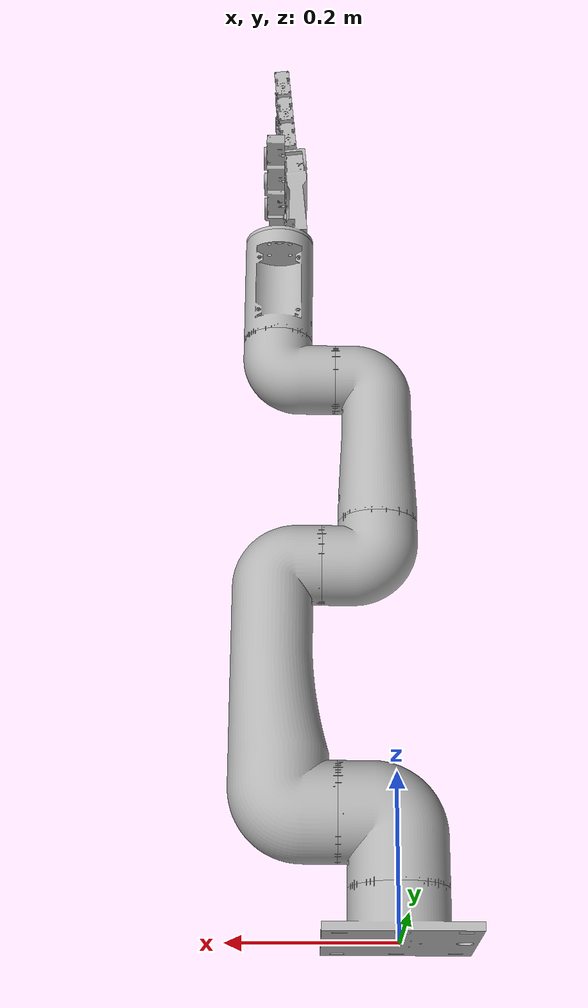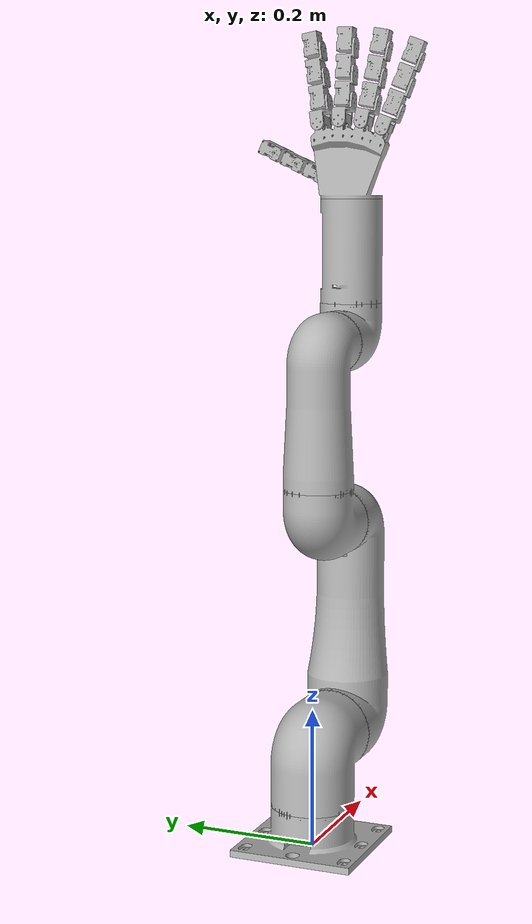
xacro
<?xml version="1.0" ?>
<robot name="mk" xmlns:xacro="http://www.ros.org/wiki/xacro">

  <!-- pass from launch: prefix:=r1_ / prefix:=r2_ ... -->

  <xacro:property name="prefix" value="real_"/>

  <xacro:include filename="$(find mk_description)/urdf/materials.xacro" />
  <xacro:include filename="$(find mk_description)/urdf/mk.trans" />
  <xacro:include filename="$(find mk_description)/urdf/mk.gazebo" />

  <link name="${prefix}base_link">
    <inertial>
      <origin xyz="0.001253595501875241 -2.425128974916387e-16 0.016880943454350202" rpy="0 0 0"/>
      <mass value="4.415971366531325"/>
      <inertia ixx="0.010003" iyy="0.009958" izz="0.017765" ixy="0.0" iyz="-0.0" ixz="3e-05"/>
    </inertial>
    <visual>
      <origin xyz="0 0 0" rpy="0 0 0"/>
      <geometry>
        <mesh filename="package://mk_description/meshes/base_link.stl" scale="0.001 0.001 0.001"/>
      </geometry>
      <material name="silver"/>
    </visual>
    <collision>
      <origin xyz="0 0 0" rpy="0 0 0"/>
      <geometry>
        <mesh filename="package://mk_description/meshes/base_link.stl" scale="0.001 0.001 0.001"/>
      </geometry>
    </collision>
  </link>

  <link name="${prefix}link1_1">
    <inertial>
      <origin xyz="0.012757531934532012 1.2186053422867295e-12 0.06719265641075811" rpy="0 0 0"/>
      <mass value="3.0929952957501237"/>
      <inertia ixx="0.011232" iyy="0.011123" izz="0.009013" ixy="0.0" iyz="0.0" ixz="-0.001286"/>
    </inertial>
    <visual>
      <origin xyz="-0.0 -0.0 -0.061" rpy="0 0 0"/>
      <geometry>
        <mesh filename="package://mk_description/meshes/link1_1.stl" scale="0.001 0.001 0.001"/>
      </geometry>
      <material name="silver"/>
    </visual>
    <collision>
      <origin xyz="-0.0 -0.0 -0.061" rpy="0 0 0"/>
      <geometry>
        <mesh filename="package://mk_description/meshes/link1_1.stl" scale="0.001 0.001 0.001"/>
      </geometry>
    </collision>
  </link>

  <link name="${prefix}link2_1">
    <inertial>
      <origin xyz="0.07202168862575391 -3.5313984794949443e-12 0.1445001916818219" rpy="0 0 0"/>
      <mass value="15.846338073110624"/>
      <inertia ixx="0.132567" iyy="0.13402" izz="0.029131" ixy="-0.0" iyz="-0.0" ixz="-0.007531"/>
    </inertial>
    <visual>
      <origin xyz="-0.071 -0.0 -0.151" rpy="0 0 0"/>
      <geometry>
        <mesh filename="package://mk_description/meshes/link2_1.stl" scale="0.001 0.001 0.001"/>
      </geometry>
      <material name="silver"/>
    </visual>
    <collision>
      <origin xyz="-0.071 -0.0 -0.151" rpy="0 0 0"/>
      <geometry>
        <mesh filename="package://mk_description/meshes/link2_1.stl" scale="0.001 0.001 0.001"/>
      </geometry>
    </collision>
  </link>

  <link name="${prefix}link3_1">
    <inertial>
      <origin xyz="-0.05114273870375564 4.038438904121806e-13 0.014758066823390759" rpy="0 0 0"/>
      <mass value="1.9656169541020214"/>
      <inertia ixx="0.003791" iyy="0.004814" izz="0.004679" ixy="0.0" iyz="-0.0" ixz="0.000672"/>
    </inertial>
    <visual>
      <origin xyz="-0.09 0.0 -0.461" rpy="0 0 0"/>
      <geometry>
        <mesh filename="package://mk_description/meshes/link3_1.stl" scale="0.001 0.001 0.001"/>
      </geometry>
      <material name="silver"/>
    </visual>
    <collision>
      <origin xyz="-0.09 0.0 -0.461" rpy="0 0 0"/>
      <geometry>
        <mesh filename="package://mk_description/meshes/link3_1.stl" scale="0.001 0.001 0.001"/>
      </geometry>
    </collision>
  </link>

  <link name="${prefix}link4_1">
    <inertial>
      <origin xyz="0.002693323451248456 3.8855923684264276e-08 0.08440714552064266" rpy="0 0 0"/>
      <mass value="7.842285748942116"/>
      <inertia ixx="0.033994" iyy="0.034351" izz="0.010735" ixy="-0.0" iyz="-0.0" ixz="-0.003025"/>
    </inertial>
    <visual>
      <origin xyz="-0.02 -0.0 -0.517" rpy="0 0 0"/>
      <geometry>
        <mesh filename="package://mk_description/meshes/link4_1.stl" scale="0.001 0.001 0.001"/>
      </geometry>
      <material name="silver"/>
    </visual>
    <collision>
      <origin xyz="-0.02 -0.0 -0.517" rpy="0 0 0"/>
      <geometry>
        <mesh filename="package://mk_description/meshes/link4_1.stl" scale="0.001 0.001 0.001"/>
      </geometry>
    </collision>
  </link>

  <link name="${prefix}link5_1">
    <inertial>
      <origin xyz="0.0559602537349705 -2.0965830206548403e-07 0.016043221095647042" rpy="0 0 0"/>
      <mass value="1.4488766384865912"/>
      <inertia ixx="0.002409" iyy="0.003275" izz="0.003165" ixy="0.0" iyz="0.0" ixz="-0.000572"/>
    </inertial>
    <visual>
      <origin xyz="-0.0735 -0.0 -0.721" rpy="0 0 0"/>
      <geometry>
        <mesh filename="package://mk_description/meshes/link5_1.stl" scale="0.001 0.001 0.001"/>
      </geometry>
      <material name="silver"/>
    </visual>
    <collision>
      <origin xyz="-0.0735 -0.0 -0.721" rpy="0 0 0"/>
      <geometry>
        <mesh filename="package://mk_description/meshes/link5_1.stl" scale="0.001 0.001 0.001"/>
      </geometry>
    </collision>
  </link>

  <link name="${prefix}link6_1">
    <inertial>
      <origin xyz="0.00010433437375184651 -0.005286826016069605 0.07445480614360678" rpy="0 0 0"/>
      <mass value="1.2273340069715037"/>
      <inertia ixx="0.004651" iyy="0.004904" izz="0.001868" ixy="-1e-06" iyz="2.6e-05" ixz="6e-06"/>
    </inertial>
    <visual>
      <origin xyz="-0.1485 -0.0 -0.7745" rpy="0 0 0"/>
      <geometry>
        <mesh filename="package://mk_description/meshes/link6_1.stl" scale="0.001 0.001 0.001"/>
      </geometry>
      <material name="silver"/>
    </visual>
    <collision>
      <origin xyz="-0.1485 -0.0 -0.7745" rpy="0 0 0"/>
      <geometry>
        <mesh filename="package://mk_description/meshes/link6_1.stl" scale="0.001 0.001 0.001"/>
      </geometry>
    </collision>
  </link>

  <link name="${prefix}palm_1">
    <inertial>
      <origin xyz="-0.01849799368570129 -0.003288621708244126 0.05472215474509601" rpy="0 0 0"/>
      <mass value="2.044043856185231"/>
      <inertia ixx="0.004173" iyy="0.002907" izz="0.001986" ixy="-3.9e-05" iyz="0.000149" ixz="0.000254"/>
    </inertial>
    <visual>
      <origin xyz="-0.1485 -0.0 -0.9245" rpy="0 0 0"/>
      <geometry>
        <mesh filename="package://mk_description/meshes/palm_1.stl" scale="0.001 0.001 0.001"/>
      </geometry>
      <material name="silver"/>
    </visual>
    <collision>
      <origin xyz="-0.1485 -0.0 -0.9245" rpy="0 0 0"/>
      <geometry>
        <mesh filename="package://mk_description/meshes/palm_1.stl" scale="0.001 0.001 0.001"/>
      </geometry>
    </collision>
  </link>

  <link name="${prefix}index_1_1">
    <inertial>
      <origin xyz="-0.012003156274217913 -0.0001843174038660758 0.015503517151384427" rpy="0 0 0"/>
      <mass value="0.04748136367345911"/>
      <inertia ixx="7e-06" iyy="1e-05" izz="8e-06" ixy="1e-06" iyz="1e-06" ixz="-0.0"/>
    </inertial>
    <visual>
      <origin xyz="-0.143105 -0.038906 -1.029721" rpy="0 0 0"/>
      <geometry>
        <mesh filename="package://mk_description/meshes/index_1_1.stl" scale="0.001 0.001 0.001"/>
      </geometry>
      <material name="silver"/>
    </visual>
    <collision>
      <origin xyz="-0.143105 -0.038906 -1.029721" rpy="0 0 0"/>
      <geometry>
        <mesh filename="package://mk_description/meshes/index_1_1.stl" scale="0.001 0.001 0.001"/>
      </geometry>
    </collision>
  </link>

  <link name="${prefix}middle_1_1">
    <inertial>
      <origin xyz="-0.011873129755786943 -0.003344684606072878 0.015242306952340856" rpy="0 0 0"/>
      <mass value="0.04748136367345911"/>
      <inertia ixx="7e-06" iyy="9e-06" izz="8e-06" ixy="1e-06" iyz="1e-06" ixz="-0.0"/>
    </inertial>
    <visual>
      <origin xyz="-0.142823 -0.007655 -1.033686" rpy="0 0 0"/>
      <geometry>
        <mesh filename="package://mk_description/meshes/middle_1_1.stl" scale="0.001 0.001 0.001"/>
      </geometry>
      <material name="silver"/>
    </visual>
    <collision>
      <origin xyz="-0.142823 -0.007655 -1.033686" rpy="0 0 0"/>
      <geometry>
        <mesh filename="package://mk_description/meshes/middle_1_1.stl" scale="0.001 0.001 0.001"/>
      </geometry>
    </collision>
  </link>

  <link name="${prefix}ring_1_1">
    <inertial>
      <origin xyz="-0.01177642870038545 -0.006392943751630707 0.01431467736832781" rpy="0 0 0"/>
      <mass value="0.04748136367345911"/>
      <inertia ixx="7e-06" iyy="9e-06" izz="9e-06" ixy="1e-06" iyz="2e-06" ixz="-0.0"/>
    </inertial>
    <visual>
      <origin xyz="-0.14332 0.0242 -1.031634" rpy="0 0 0"/>
      <geometry>
        <mesh filename="package://mk_description/meshes/ring_1_1.stl" scale="0.001 0.001 0.001"/>
      </geometry>
      <material name="silver"/>
    </visual>
    <collision>
      <origin xyz="-0.14332 0.0242 -1.031634" rpy="0 0 0"/>
      <geometry>
        <mesh filename="package://mk_description/meshes/ring_1_1.stl" scale="0.001 0.001 0.001"/>
      </geometry>
    </collision>
  </link>

  <link name="${prefix}pinky_1_1">
    <inertial>
      <origin xyz="-0.011710261878068423 -0.00918021492423643 0.01276899388554198" rpy="0 0 0"/>
      <mass value="0.04748136367345911"/>
      <inertia ixx="7e-06" iyy="8e-06" izz="9e-06" ixy="1e-06" iyz="1e-06" ixz="-0.0"/>
    </inertial>
    <visual>
      <origin xyz="-0.144438 0.053842 -1.022516" rpy="0 0 0"/>
      <geometry>
        <mesh filename="package://mk_description/meshes/pinky_1_1.stl" scale="0.001 0.001 0.001"/>
      </geometry>
      <material name="silver"/>
    </visual>
    <collision>
      <origin xyz="-0.144438 0.053842 -1.022516" rpy="0 0 0"/>
      <geometry>
        <mesh filename="package://mk_description/meshes/pinky_1_1.stl" scale="0.001 0.001 0.001"/>
      </geometry>
    </collision>
  </link>

  <link name="${prefix}index_2_1">
    <inertial>
      <origin xyz="0.0013592426070857533 0.014112910707545577 0.006584417463850301" rpy="0 0 0"/>
      <mass value="0.1282452686281743"/>
      <inertia ixx="2.4e-05" iyy="2.2e-05" izz="1.1e-05" ixy="-0.0" iyz="1e-06" ixz="-1e-06"/>
    </inertial>
    <visual>
      <origin xyz="-0.13696 -0.030659 -1.064498" rpy="0 0 0"/>
      <geometry>
        <mesh filename="package://mk_description/meshes/index_2_1.stl" scale="0.001 0.001 0.001"/>
      </geometry>
      <material name="silver"/>
    </visual>
    <collision>
      <origin xyz="-0.13696 -0.030659 -1.064498" rpy="0 0 0"/>
      <geometry>
        <mesh filename="package://mk_description/meshes/index_2_1.stl" scale="0.001 0.001 0.001"/>
      </geometry>
    </collision>
  </link>

  <link name="${prefix}index_3_1">
    <inertial>
      <origin xyz="0.001359142984049877 0.014112479821706991 0.006584419644577233" rpy="0 0 0"/>
      <mass value="0.1282452686281743"/>
      <inertia ixx="2.4e-05" iyy="2.2e-05" izz="1.1e-05" ixy="-0.0" iyz="1e-06" ixz="-1e-06"/>
    </inertial>
    <visual>
      <origin xyz="-0.140923 -0.037336 -1.102207" rpy="0 0 0"/>
      <geometry>
        <mesh filename="package://mk_description/meshes/index_3_1.stl" scale="0.001 0.001 0.001"/>
      </geometry>
      <material name="silver"/>
    </visual>
    <collision>
      <origin xyz="-0.140923 -0.037336 -1.102207" rpy="0 0 0"/>
      <geometry>
        <mesh filename="package://mk_description/meshes/index_3_1.stl" scale="0.001 0.001 0.001"/>
      </geometry>
    </collision>
  </link>

  <link name="${prefix}index_4_1">
    <inertial>
      <origin xyz="0.0012067405325764669 0.014773830435752318 0.0046425218728198825" rpy="0 0 0"/>
      <mass value="0.1185904893413169"/>
      <inertia ixx="1.7e-05" iyy="1.5e-05" izz="1e-05" ixy="-0.0" iyz="-1e-06" ixz="-1e-06"/>
    </inertial>
    <visual>
      <origin xyz="-0.144886 -0.044012 -1.139916" rpy="0 0 0"/>
      <geometry>
        <mesh filename="package://mk_description/meshes/index_4_1.stl" scale="0.001 0.001 0.001"/>
      </geometry>
      <material name="silver"/>
    </visual>
    <collision>
      <origin xyz="-0.144886 -0.044012 -1.139916" rpy="0 0 0"/>
      <geometry>
        <mesh filename="package://mk_description/meshes/index_4_1.stl" scale="0.001 0.001 0.001"/>
      </geometry>
    </collision>
  </link>

  <link name="${prefix}middle_2_1">
    <inertial>
      <origin xyz="0.0009410365815004373 0.012755743075373938 0.008986834760588147" rpy="0 0 0"/>
      <mass value="0.1282452686281743"/>
      <inertia ixx="2.4e-05" iyy="2.1e-05" izz="1.1e-05" ixy="0.0" iyz="2e-06" ixz="-1e-06"/>
    </inertial>
    <visual>
      <origin xyz="-0.137217 0.006845 -1.066452" rpy="0 0 0"/>
      <geometry>
        <mesh filename="package://mk_description/meshes/middle_2_1.stl" scale="0.001 0.001 0.001"/>
      </geometry>
      <material name="silver"/>
    </visual>
    <collision>
      <origin xyz="-0.137217 0.006845 -1.066452" rpy="0 0 0"/>
      <geometry>
        <mesh filename="package://mk_description/meshes/middle_2_1.stl" scale="0.001 0.001 0.001"/>
      </geometry>
    </collision>
  </link>

  <link name="${prefix}middle_3_1">
    <inertial>
      <origin xyz="0.0009403824173050968 0.012755743075381711 0.008986927732266725" rpy="0 0 0"/>
      <mass value="0.1282452686281743"/>
      <inertia ixx="2.4e-05" iyy="2.1e-05" izz="1.1e-05" ixy="0.0" iyz="2e-06" ixz="-1e-06"/>
    </inertial>
    <visual>
      <origin xyz="-0.141242 0.006845 -1.104741" rpy="0 0 0"/>
      <geometry>
        <mesh filename="package://mk_description/meshes/middle_3_1.stl" scale="0.001 0.001 0.001"/>
      </geometry>
      <material name="silver"/>
    </visual>
    <collision>
      <origin xyz="-0.141242 0.006845 -1.104741" rpy="0 0 0"/>
      <geometry>
        <mesh filename="package://mk_description/meshes/middle_3_1.stl" scale="0.001 0.001 0.001"/>
      </geometry>
    </collision>
  </link>

  <link name="${prefix}middle_4_1">
    <inertial>
      <origin xyz="0.0007519472486991197 0.013745528207874521 0.007193841713581728" rpy="0 0 0"/>
      <mass value="0.1185904893413169"/>
      <inertia ixx="1.7e-05" iyy="1.5e-05" izz="9e-06" ixy="-0.0" iyz="-0.0" ixz="-1e-06"/>
    </inertial>
    <visual>
      <origin xyz="-0.145266 0.006845 -1.14303" rpy="0 0 0"/>
      <geometry>
        <mesh filename="package://mk_description/meshes/middle_4_1.stl" scale="0.001 0.001 0.001"/>
      </geometry>
      <material name="silver"/>
    </visual>
    <collision>
      <origin xyz="-0.145266 0.006845 -1.14303" rpy="0 0 0"/>
      <geometry>
        <mesh filename="package://mk_description/meshes/middle_4_1.stl" scale="0.001 0.001 0.001"/>
      </geometry>
    </collision>
  </link>

  <link name="${prefix}ring_2_1">
    <inertial>
      <origin xyz="0.0004933103936223815 0.010978865647973998 0.01111737284077896" rpy="0 0 0"/>
      <mass value="0.1282452686281743"/>
      <inertia ixx="2.4e-05" iyy="2e-05" izz="1.2e-05" ixy="1e-06" iyz="4e-06" ixz="-1e-06"/>
    </inertial>
    <visual>
      <origin xyz="-0.138159 0.044474 -1.061258" rpy="0 0 0"/>
      <geometry>
        <mesh filename="package://mk_description/meshes/ring_2_1.stl" scale="0.001 0.001 0.001"/>
      </geometry>
      <material name="silver"/>
    </visual>
    <collision>
      <origin xyz="-0.138159 0.044474 -1.061258" rpy="0 0 0"/>
      <geometry>
        <mesh filename="package://mk_description/meshes/ring_2_1.stl" scale="0.001 0.001 0.001"/>
      </geometry>
    </collision>
  </link>

  <link name="${prefix}ring_3_1">
    <inertial>
      <origin xyz="0.0004932107705865052 0.010978296533827897 0.011117375021508336" rpy="0 0 0"/>
      <mass value="0.1282452686281743"/>
      <inertia ixx="2.4e-05" iyy="2e-05" izz="1.2e-05" ixy="1e-06" iyz="4e-06" ixz="-1e-06"/>
    </inertial>
    <visual>
      <origin xyz="-0.142122 0.05115 -1.098967" rpy="0 0 0"/>
      <geometry>
        <mesh filename="package://mk_description/meshes/ring_3_1.stl" scale="0.001 0.001 0.001"/>
      </geometry>
      <material name="silver"/>
    </visual>
    <collision>
      <origin xyz="-0.142122 0.05115 -1.098967" rpy="0 0 0"/>
      <geometry>
        <mesh filename="package://mk_description/meshes/ring_3_1.stl" scale="0.001 0.001 0.001"/>
      </geometry>
    </collision>
  </link>

  <link name="${prefix}ring_4_1">
    <inertial>
      <origin xyz="0.00027360763069000926 0.012264850963387482 0.0095272488413789" rpy="0 0 0"/>
      <mass value="0.1185904893413169"/>
      <inertia ixx="1.7e-05" iyy="1.5e-05" izz="9e-06" ixy="0.0" iyz="1e-06" ixz="-1e-06"/>
    </inertial>
    <visual>
      <origin xyz="-0.146085 0.057827 -1.136676" rpy="0 0 0"/>
      <geometry>
        <mesh filename="package://mk_description/meshes/ring_4_1.stl" scale="0.001 0.001 0.001"/>
      </geometry>
      <material name="silver"/>
    </visual>
    <collision>
      <origin xyz="-0.146085 0.057827 -1.136676" rpy="0 0 0"/>
      <geometry>
        <mesh filename="package://mk_description/meshes/ring_4_1.stl" scale="0.001 0.001 0.001"/>
      </geometry>
    </collision>
  </link>

  <link name="${prefix}pinky_2_1">
    <inertial>
      <origin xyz="2.2107880944283176e-05 0.008666033434462497 0.012814334487809775" rpy="0 0 0"/>
      <mass value="0.1282452686281743"/>
      <inertia ixx="2.4e-05" iyy="1.8e-05" izz="1.4e-05" ixy="1e-06" iyz="5e-06" ixz="-1e-06"/>
    </inertial>
    <visual>
      <origin xyz="-0.139636 0.079177 -1.048017" rpy="0 0 0"/>
      <geometry>
        <mesh filename="package://mk_description/meshes/pinky_2_1.stl" scale="0.001 0.001 0.001"/>
      </geometry>
      <material name="silver"/>
    </visual>
    <collision>
      <origin xyz="-0.139636 0.079177 -1.048017" rpy="0 0 0"/>
      <geometry>
        <mesh filename="package://mk_description/meshes/pinky_2_1.stl" scale="0.001 0.001 0.001"/>
      </geometry>
    </collision>
  </link>

  <link name="${prefix}pinky_3_1">
    <inertial>
      <origin xyz="8.091020338218957e-06 0.008852933732520829 0.012884042204742041" rpy="0 0 0"/>
      <mass value="0.1282452686281743"/>
      <inertia ixx="2.4e-05" iyy="1.8e-05" izz="1.4e-05" ixy="1e-06" iyz="5e-06" ixz="-1e-06"/>
    </inertial>
    <visual>
      <origin xyz="-0.143427 0.092468 -1.083951" rpy="0 0 0"/>
      <geometry>
        <mesh filename="package://mk_description/meshes/pinky_3_1.stl" scale="0.001 0.001 0.001"/>
      </geometry>
      <material name="silver"/>
    </visual>
    <collision>
      <origin xyz="-0.143427 0.092468 -1.083951" rpy="0 0 0"/>
      <geometry>
        <mesh filename="package://mk_description/meshes/pinky_3_1.stl" scale="0.001 0.001 0.001"/>
      </geometry>
    </collision>
  </link>

  <link name="${prefix}pinky_4_1">
    <inertial>
      <origin xyz="-0.00023699550517802814 0.010392110335995783 0.01154159751508299" rpy="0 0 0"/>
      <mass value="0.1185904893413169"/>
      <inertia ixx="1.7e-05" iyy="1.5e-05" izz="1e-05" ixy="0.0" iyz="2e-06" ixz="-1e-06"/>
    </inertial>
    <visual>
      <origin xyz="-0.147204 0.105572 -1.119955" rpy="0 0 0"/>
      <geometry>
        <mesh filename="package://mk_description/meshes/pinky_4_1.stl" scale="0.001 0.001 0.001"/>
      </geometry>
      <material name="silver"/>
    </visual>
    <collision>
      <origin xyz="-0.147204 0.105572 -1.119955" rpy="0 0 0"/>
      <geometry>
        <mesh filename="package://mk_description/meshes/pinky_4_1.stl" scale="0.001 0.001 0.001"/>
      </geometry>
    </collision>
  </link>

  <link name="${prefix}thumb_1_1">
    <inertial>
      <origin xyz="0.0033442043857143666 0.01920624215067031 -0.008254977053352541" rpy="0 0 0"/>
      <mass value="0.04748136367345911"/>
      <inertia ixx="9e-06" iyy="8e-06" izz="8e-06" ixy="-2e-06" iyz="1e-06" ixz="-0.0"/>
    </inertial>
    <visual>
      <origin xyz="-0.15275 -0.011386 -0.962857" rpy="0 0 0"/>
      <geometry>
        <mesh filename="package://mk_description/meshes/thumb_1_1.stl" scale="0.001 0.001 0.001"/>
      </geometry>
      <material name="silver"/>
    </visual>
    <collision>
      <origin xyz="-0.15275 -0.011386 -0.962857" rpy="0 0 0"/>
      <geometry>
        <mesh filename="package://mk_description/meshes/thumb_1_1.stl" scale="0.001 0.001 0.001"/>
      </geometry>
    </collision>
  </link>

  <link name="${prefix}thumb_2_1">
    <inertial>
      <origin xyz="-0.012756223295727287 0.008187679826243473 0.003822349671507075" rpy="0 0 0"/>
      <mass value="0.1282452686281743"/>
      <inertia ixx="2.1e-05" iyy="1.3e-05" izz="2.2e-05" ixy="-2e-06" iyz="-5e-06" ixz="-1e-06"/>
    </inertial>
    <visual>
      <origin xyz="-0.16725 -0.048841 -0.958255" rpy="0 0 0"/>
      <geometry>
        <mesh filename="package://mk_description/meshes/thumb_2_1.stl" scale="0.001 0.001 0.001"/>
      </geometry>
      <material name="silver"/>
    </visual>
    <collision>
      <origin xyz="-0.16725 -0.048841 -0.958255" rpy="0 0 0"/>
      <geometry>
        <mesh filename="package://mk_description/meshes/thumb_2_1.stl" scale="0.001 0.001 0.001"/>
      </geometry>
    </collision>
  </link>

  <link name="${prefix}thumb_3_1">
    <inertial>
      <origin xyz="-0.012756223295727565 0.0081875296271577 0.0038221527485170492" rpy="0 0 0"/>
      <mass value="0.1282452686281743"/>
      <inertia ixx="2.1e-05" iyy="1.3e-05" izz="2.2e-05" ixy="-2e-06" iyz="-5e-06" ixz="-1e-06"/>
    </inertial>
    <visual>
      <origin xyz="-0.16725 -0.083734 -0.974526" rpy="0 0 0"/>
      <geometry>
        <mesh filename="package://mk_description/meshes/thumb_3_1.stl" scale="0.001 0.001 0.001"/>
      </geometry>
      <material name="silver"/>
    </visual>
    <collision>
      <origin xyz="-0.16725 -0.083734 -0.974526" rpy="0 0 0"/>
      <geometry>
        <mesh filename="package://mk_description/meshes/thumb_3_1.stl" scale="0.001 0.001 0.001"/>
      </geometry>
    </collision>
  </link>

  <link name="${prefix}thumb_4_1">
    <inertial>
      <origin xyz="-0.013746008428213302 0.006554095628134901 0.00306021727433603" rpy="0 0 0"/>
      <mass value="0.1185904893413169"/>
      <inertia ixx="1.5e-05" iyy="1.1e-05" izz="1.6e-05" ixy="0.0" iyz="-3e-06" ixz="0.0"/>
    </inertial>
    <visual>
      <origin xyz="-0.16725 -0.118626 -0.990797" rpy="0 0 0"/>
      <geometry>
        <mesh filename="package://mk_description/meshes/thumb_4_1.stl" scale="0.001 0.001 0.001"/>
      </geometry>
      <material name="silver"/>
    </visual>
    <collision>
      <origin xyz="-0.16725 -0.118626 -0.990797" rpy="0 0 0"/>
      <geometry>
        <mesh filename="package://mk_description/meshes/thumb_4_1.stl" scale="0.001 0.001 0.001"/>
      </geometry>
    </collision>
  </link>

  <joint name="${prefix}joint1" type="continuous">
    <origin xyz="0.0 0.0 0.061" rpy="0 0 0"/>
    <parent link="${prefix}base_link"/>
    <child link="${prefix}link1_1"/>
    <axis xyz="0.0 0.0 1.0"/>
    <dynamics damping="1.0" friction="1.0"/>
  </joint>

  <joint name="${prefix}joint2" type="continuous">
    <origin xyz="0.071 0.0 0.09" rpy="0 0 0"/>
    <parent link="${prefix}link1_1"/>
    <child link="${prefix}link2_1"/>
    <axis xyz="-1.0 -0.0 -0.0"/>
    <dynamics damping="1.0" friction="1.0"/>
  </joint>

  <joint name="${prefix}joint3" type="continuous">
    <origin xyz="0.019 -0.0 0.31" rpy="0 0 0"/>
    <parent link="${prefix}link2_1"/>
    <child link="${prefix}link3_1"/>
    <axis xyz="1.0 -0.0 0.0"/>
    <dynamics damping="1.0" friction="1.0"/>
  </joint>

  <joint name="${prefix}joint4" type="continuous">
    <origin xyz="-0.07 0.0 0.056" rpy="0 0 0"/>
    <parent link="${prefix}link3_1"/>
    <child link="${prefix}link4_1"/>
    <axis xyz="0.0 -0.0 -1.0"/>
    <dynamics damping="1.0" friction="1.0"/>
  </joint>

  <joint name="${prefix}joint5" type="continuous">
    <origin xyz="0.0535 0.0 0.204" rpy="0 0 0"/>
    <parent link="${prefix}link4_1"/>
    <child link="${prefix}link5_1"/>
    <axis xyz="-1.0 0.0 0.0"/>
    <dynamics damping="1.0" friction="1.0"/>
  </joint>

  <joint name="${prefix}joint6" type="continuous">
    <origin xyz="0.075 0.0 0.0535" rpy="0 0 0"/>
    <parent link="${prefix}link5_1"/>
    <child link="${prefix}link6_1"/>
    <axis xyz="-0.0 0.0 -1.0"/>
    <dynamics damping="1.0" friction="1.0"/>
  </joint>

  <joint name="${prefix}fixed_hand_link6" type="fixed">
    <origin xyz="0.0 0.0 0.15" rpy="0 0 0"/>
    <parent link="${prefix}link6_1"/>
    <child link="${prefix}palm_1"/>
  </joint>

  <joint name="${prefix}joint_index_RT" type="continuous">
    <origin xyz="-0.005395 0.038906 0.105221" rpy="0 0 0"/>
    <parent link="${prefix}palm_1"/>
    <child link="${prefix}index_1_1"/>
    <axis xyz="-0.994109 0.051541 0.095347"/>
    <dynamics damping="1.0" friction="1.0"/>
  </joint>

  <joint name="${prefix}joint_middle_RT" type="continuous">
    <origin xyz="-0.005677 0.007655 0.109186" rpy="0 0 0"/>
    <parent link="${prefix}palm_1"/>
    <child link="${prefix}middle_1_1"/>
    <axis xyz="-0.994522 0.0 0.104528"/>
    <dynamics damping="1.0" friction="1.0"/>
  </joint>

  <joint name="${prefix}joint_ring_RT" type="continuous">
    <origin xyz="-0.00518 -0.0242 0.107134" rpy="0 0 0"/>
    <parent link="${prefix}palm_1"/>
    <child link="${prefix}ring_1_1"/>
    <axis xyz="-0.994109 -0.051541 0.095347"/>
    <dynamics damping="1.0" friction="1.0"/>
  </joint>

  <joint name="${prefix}joint_pinky_RT" type="continuous">
    <origin xyz="-0.004062 -0.053842 0.098016" rpy="0 0 0"/>
    <parent link="${prefix}palm_1"/>
    <child link="${prefix}pinky_1_1"/>
    <axis xyz="-0.992811 -0.098225 0.068401"/>
    <dynamics damping="1.0" friction="1.0"/>
  </joint>

  <joint name="${prefix}joint_index_MCP" type="continuous">
    <origin xyz="-0.006145 -0.008247 0.034777" rpy="0 0 0"/>
    <parent link="${prefix}index_1_1"/>
    <child link="${prefix}index_2_1"/>
    <axis xyz="0.033947 0.983499 -0.177701"/>
    <dynamics damping="1.0" friction="1.0"/>
  </joint>

  <joint name="${prefix}joint_index_PIP" type="continuous">
    <origin xyz="0.003963 0.006677 0.037709" rpy="0 0 0"/>
    <parent link="${prefix}index_2_1"/>
    <child link="${prefix}index_3_1"/>
    <axis xyz="0.033947 0.983499 -0.177701"/>
    <dynamics damping="1.0" friction="1.0"/>
  </joint>

  <joint name="${prefix}joint_index_DIP" type="continuous">
    <origin xyz="0.003963 0.006676 0.037709" rpy="0 0 0"/>
    <parent link="${prefix}index_3_1"/>
    <child link="${prefix}index_4_1"/>
    <axis xyz="0.033947 0.983499 -0.177701"/>
    <dynamics damping="1.0" friction="1.0"/>
  </joint>

  <joint name="${prefix}joint_middle_MCP" type="continuous">
    <origin xyz="-0.005606 -0.0145 0.032766" rpy="0 0 0"/>
    <parent link="${prefix}middle_1_1"/>
    <child link="${prefix}middle_2_1"/>
    <axis xyz="-0.0 1.0 -0.0"/>
    <dynamics damping="1.0" friction="1.0"/>
  </joint>

  <joint name="${prefix}joint_middle_PIP" type="continuous">
    <origin xyz="0.004025 0.0 0.038289" rpy="0 0 0"/>
    <parent link="${prefix}middle_2_1"/>
    <child link="${prefix}middle_3_1"/>
    <axis xyz="-0.0 1.0 -0.0"/>
    <dynamics damping="1.0" friction="1.0"/>
  </joint>

  <joint name="${prefix}joint_middle_DIP" type="continuous">
    <origin xyz="0.004024 0.0 0.038289" rpy="0 0 0"/>
    <parent link="${prefix}middle_3_1"/>
    <child link="${prefix}middle_4_1"/>
    <axis xyz="-0.0 1.0 -0.0"/>
    <dynamics damping="1.0" friction="1.0"/>
  </joint>

  <joint name="${prefix}joint_ring_MCP" type="continuous">
    <origin xyz="-0.005161 -0.020274 0.029624" rpy="0 0 0"/>
    <parent link="${prefix}ring_1_1"/>
    <child link="${prefix}ring_2_1"/>
    <axis xyz="-0.033947 0.983499 0.177701"/>
    <dynamics damping="1.0" friction="1.0"/>
  </joint>

  <joint name="${prefix}joint_ring_PIP" type="continuous">
    <origin xyz="0.003963 -0.006676 0.037709" rpy="0 0 0"/>
    <parent link="${prefix}ring_2_1"/>
    <child link="${prefix}ring_3_1"/>
    <axis xyz="-0.033947 0.983499 0.177701"/>
    <dynamics damping="1.0" friction="1.0"/>
  </joint>

  <joint name="${prefix}joint_ring_DIP" type="continuous">
    <origin xyz="0.003963 -0.006677 0.037709" rpy="0 0 0"/>
    <parent link="${prefix}ring_3_1"/>
    <child link="${prefix}ring_4_1"/>
    <axis xyz="-0.033947 0.983499 0.177701"/>
    <dynamics damping="1.0" friction="1.0"/>
  </joint>

  <joint name="${prefix}joint_pinky_MCP" type="continuous">
    <origin xyz="-0.004802 -0.025335 0.025501" rpy="0 0 0"/>
    <parent link="${prefix}pinky_1_1"/>
    <child link="${prefix}pinky_2_1"/>
    <axis xyz="-0.068575 0.935149 0.347555"/>
    <dynamics damping="1.0" friction="1.0"/>
  </joint>

  <joint name="${prefix}joint_pinky_PIP" type="continuous">
    <origin xyz="0.003791 -0.013291 0.035934" rpy="0 0 0"/>
    <parent link="${prefix}pinky_2_1"/>
    <child link="${prefix}pinky_3_1"/>
    <axis xyz="-0.068575 0.935149 0.347555"/>
    <dynamics damping="1.0" friction="1.0"/>
  </joint>

  <joint name="${prefix}joint_pinky_DIP" type="continuous">
    <origin xyz="0.003777 -0.013104 0.036004" rpy="0 0 0"/>
    <parent link="${prefix}pinky_3_1"/>
    <child link="${prefix}pinky_4_1"/>
    <axis xyz="-0.068575 0.935149 0.347555"/>
    <dynamics damping="1.0" friction="1.0"/>
  </joint>

  <joint name="${prefix}joint_thumb_CMC_1" type="continuous">
    <origin xyz="0.00425 0.011386 0.038357" rpy="0 0 0"/>
    <parent link="${prefix}palm_1"/>
    <child link="${prefix}thumb_1_1"/>
    <axis xyz="-0.0 0.422618 -0.906308"/>
    <dynamics damping="1.0" friction="1.0"/>
  </joint>

  <joint name="${prefix}joint_thumb_CMC_2" type="continuous">
    <origin xyz="0.0145 0.037455 -0.004602" rpy="0 0 0"/>
    <parent link="${prefix}thumb_1_1"/>
    <child link="${prefix}thumb_2_1"/>
    <axis xyz="-1.0 -0.0 -0.0"/>
    <dynamics damping="1.0" friction="1.0"/>
  </joint>

  <joint name="${prefix}joint_thumb_MP" type="continuous">
    <origin xyz="0.0 0.034893 0.016271" rpy="0 0 0"/>
    <parent link="${prefix}thumb_2_1"/>
    <child link="${prefix}thumb_3_1"/>
    <axis xyz="-1.0 -0.0 -0.0"/>
    <dynamics damping="1.0" friction="1.0"/>
  </joint>

  <joint name="${prefix}joint_thumb_IP" type="continuous">
    <origin xyz="0.0 0.034892 0.016271" rpy="0 0 0"/>
    <parent link="${prefix}thumb_3_1"/>
    <child link="${prefix}thumb_4_1"/>
    <axis xyz="-1.0 -0.0 -0.0"/>
    <dynamics damping="1.0" friction="1.0"/>
  </joint>

</robot>

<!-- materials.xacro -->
<robot name="mk" xmlns:xacro="http://www.ros.org/wiki/xacro" >

<material name="silver">
  <color rgba="0.700 0.700 0.700 1.000"/>
</material>

</robot>

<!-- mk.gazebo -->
<robot name="mk" xmlns:xacro="http://www.ros.org/wiki/xacro" >

<xacro:property name="body_color" value="Gazebo/Silver" />

<gazebo>
  <plugin name="control" filename="libgazebo_ros_control.so"/>
</gazebo>
<gazebo reference="base_link">
  <material>${body_color}</material>
  <mu1>0.2</mu1>
  <mu2>0.2</mu2>
  <selfCollide>true</selfCollide>
  <gravity>true</gravity>
</gazebo>

<gazebo reference="link1_1">
  <material>${body_color}</material>
  <mu1>0.2</mu1>
  <mu2>0.2</mu2>
  <selfCollide>true</selfCollide>
</gazebo>

<gazebo reference="link2_1">
  <material>${body_color}</material>
  <mu1>0.2</mu1>
  <mu2>0.2</mu2>
  <selfCollide>true</selfCollide>
</gazebo>

<gazebo reference="link3_1">
  <material>${body_color}</material>
  <mu1>0.2</mu1>
  <mu2>0.2</mu2>
  <selfCollide>true</selfCollide>
</gazebo>

<gazebo reference="link4_1">
  <material>${body_color}</material>
  <mu1>0.2</mu1>
  <mu2>0.2</mu2>
  <selfCollide>true</selfCollide>
</gazebo>

<gazebo reference="link5_1">
  <material>${body_color}</material>
  <mu1>0.2</mu1>
  <mu2>0.2</mu2>
  <selfCollide>true</selfCollide>
</gazebo>

<gazebo reference="link6_1">
  <material>${body_color}</material>
  <mu1>0.2</mu1>
  <mu2>0.2</mu2>
  <selfCollide>true</selfCollide>
</gazebo>

<gazebo reference="palm_1">
  <material>${body_color}</material>
  <mu1>0.2</mu1>
  <mu2>0.2</mu2>
  <selfCollide>true</selfCollide>
</gazebo>

<gazebo reference="index_1_1">
  <material>${body_color}</material>
  <mu1>0.2</mu1>
  <mu2>0.2</mu2>
  <selfCollide>true</selfCollide>
</gazebo>

<gazebo reference="middle_1_1">
  <material>${body_color}</material>
  <mu1>0.2</mu1>
  <mu2>0.2</mu2>
  <selfCollide>true</selfCollide>
</gazebo>

<gazebo reference="ring_1_1">
  <material>${body_color}</material>
  <mu1>0.2</mu1>
  <mu2>0.2</mu2>
  <selfCollide>true</selfCollide>
</gazebo>

<gazebo reference="pinky_1_1">
  <material>${body_color}</material>
  <mu1>0.2</mu1>
  <mu2>0.2</mu2>
  <selfCollide>true</selfCollide>
</gazebo>

<gazebo reference="index_2_1">
  <material>${body_color}</material>
  <mu1>0.2</mu1>
  <mu2>0.2</mu2>
  <selfCollide>true</selfCollide>
</gazebo>

<gazebo reference="index_3_1">
  <material>${body_color}</material>
  <mu1>0.2</mu1>
  <mu2>0.2</mu2>
  <selfCollide>true</selfCollide>
</gazebo>

<gazebo reference="index_4_1">
  <material>${body_color}</material>
  <mu1>0.2</mu1>
  <mu2>0.2</mu2>
  <selfCollide>true</selfCollide>
</gazebo>

<gazebo reference="middle_2_1">
  <material>${body_color}</material>
  <mu1>0.2</mu1>
  <mu2>0.2</mu2>
  <selfCollide>true</selfCollide>
</gazebo>

<gazebo reference="middle_3_1">
  <material>${body_color}</material>
  <mu1>0.2</mu1>
  <mu2>0.2</mu2>
  <selfCollide>true</selfCollide>
</gazebo>

<gazebo reference="middle_4_1">
  <material>${body_color}</material>
  <mu1>0.2</mu1>
  <mu2>0.2</mu2>
  <selfCollide>true</selfCollide>
</gazebo>

<gazebo reference="ring_2_1">
  <material>${body_color}</material>
  <mu1>0.2</mu1>
  <mu2>0.2</mu2>
  <selfCollide>true</selfCollide>
</gazebo>

<gazebo reference="ring_3_1">
  <material>${body_color}</material>
  <mu1>0.2</mu1>
  <mu2>0.2</mu2>
  <selfCollide>true</selfCollide>
</gazebo>

<gazebo reference="ring_4_1">
  <material>${body_color}</material>
  <mu1>0.2</mu1>
  <mu2>0.2</mu2>
  <selfCollide>true</selfCollide>
</gazebo>

<gazebo reference="pinky_2_1">
  <material>${body_color}</material>
  <mu1>0.2</mu1>
  <mu2>0.2</mu2>
  <selfCollide>true</selfCollide>
</gazebo>

<gazebo reference="pinky_3_1">
  <material>${body_color}</material>
  <mu1>0.2</mu1>
  <mu2>0.2</mu2>
  <selfCollide>true</selfCollide>
</gazebo>

<gazebo reference="pinky_4_1">
  <material>${body_color}</material>
  <mu1>0.2</mu1>
  <mu2>0.2</mu2>
  <selfCollide>true</selfCollide>
</gazebo>

<gazebo reference="thumb_1_1">
  <material>${body_color}</material>
  <mu1>0.2</mu1>
  <mu2>0.2</mu2>
  <selfCollide>true</selfCollide>
</gazebo>

<gazebo reference="thumb_2_1">
  <material>${body_color}</material>
  <mu1>0.2</mu1>
  <mu2>0.2</mu2>
  <selfCollide>true</selfCollide>
</gazebo>

<gazebo reference="thumb_3_1">
  <material>${body_color}</material>
  <mu1>0.2</mu1>
  <mu2>0.2</mu2>
  <selfCollide>true</selfCollide>
</gazebo>

<gazebo reference="thumb_4_1">
  <material>${body_color}</material>
  <mu1>0.2</mu1>
  <mu2>0.2</mu2>
  <selfCollide>true</selfCollide>
</gazebo>

</robot>
